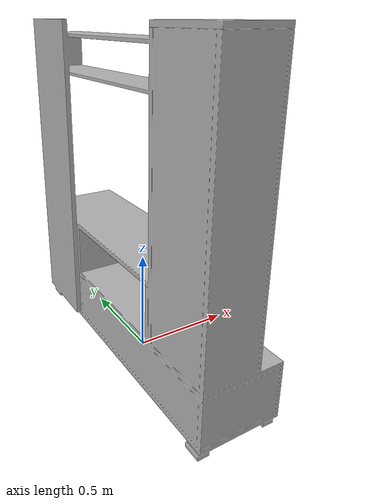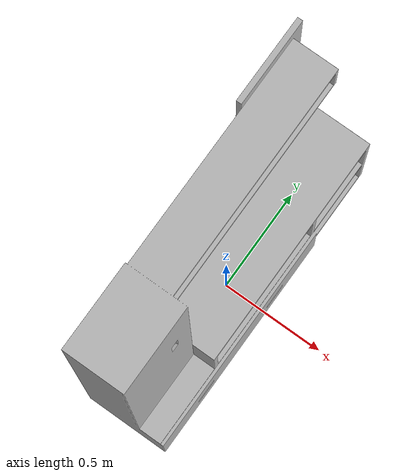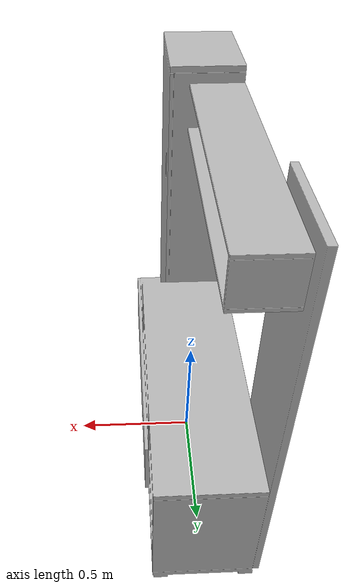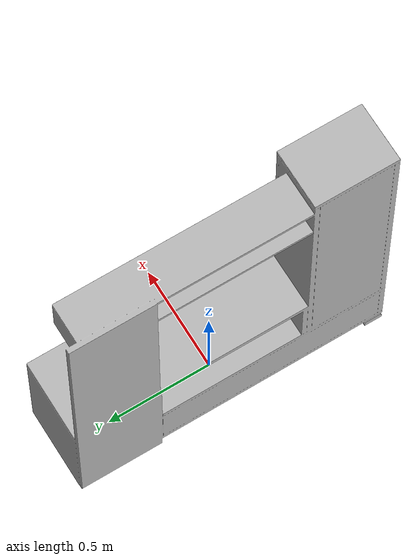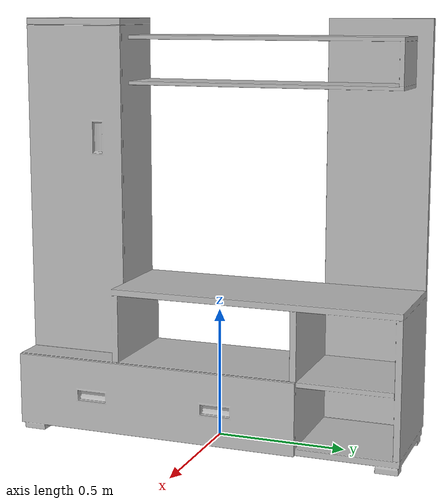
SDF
<?xml version='1.0'?>
<sdf version='1.4'>
  <model name='577'>
    <pose>0 0 0 0 0 0</pose>
    <static>true</static>
    <link name='link'>
      <collision name='collision'>
        <pose>0 0 0 0 0 0</pose>
        <geometry>
          <box>
            <size>0.430754 1.51002 2</size>
          </box>
        </geometry>
      </collision>
      <visual name='visual'>
        <pose>0 0 0 0 0 0</pose>
        <geometry>
          <mesh><uri>model://577/577.dae</uri></mesh>
        </geometry>
      </visual>
    </link>
  </model>
</sdf>
